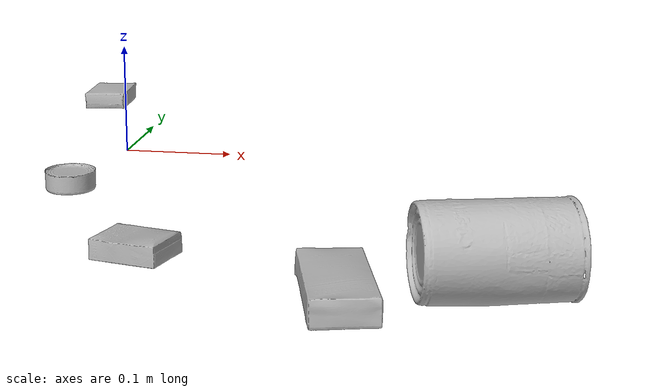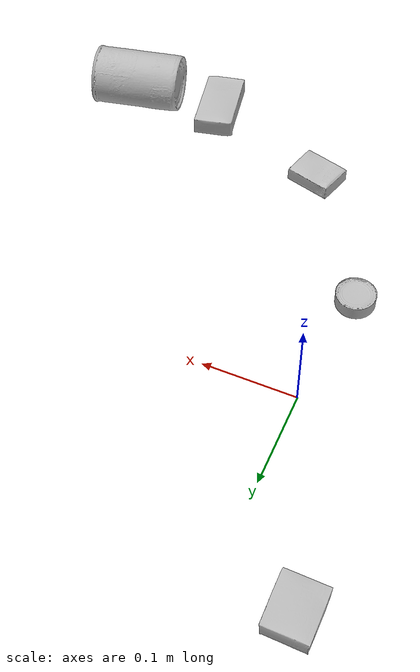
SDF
<sdf version="1.4">
  <world name="default">
    <light name="light1" type="point">
      <pose>0 0 1 0 0 0</pose>
      <diffuse>3 3 3 1</diffuse>
      <specular>3 3 3 1</specular>
    </light>
    <light name="light2" type="point">
      <pose>0 0.5 2 0 0 0</pose>
      <diffuse>1 1 1 1</diffuse>
      <specular>1 1 1 1</specular>
    </light>
    <light name="light3" type="point">
      <pose>0 0.5 2 0 0 0</pose>
      <diffuse>3 3 3 1</diffuse>
      <specular>3 3 3 1</specular>
    </light>
    <scene>
      <ambient>0.7 0.7 0.7</ambient>
    </scene>
    <model name="box1">
      <link name="link_box1">
        <collision name="default">
          <geometry>
            <mesh>
              <uri>model://cracker_box/collision_meshes/collision.obj</uri>
              <scale>0.25 0.25 0.25</scale>
            </mesh>
          </geometry>
          <surface>
            <friction>
              <ode>
                <mu>0.5</mu>
                <mu2>0.5</mu2>
              </ode>
            </friction>
          <contact>
        <ode>
            <max_vel>0</max_vel>
            <min_depth>0.0001</min_depth>
            <kp>1e8</kp>
        </ode>
    </contact></surface>
        </collision>
        <visual name="default">
          <geometry>
            <mesh>
              <uri>model://cracker_box/visual_meshes/visual.dae</uri>
              <scale>0.25 0.25 0.25</scale>
            </mesh>
          </geometry>
        </visual>
        <inertial>
          <mass>0.029061755165457726</mass>
          <pose>0.00023660456645302474 6.358561950037256e-05 -0.0004257383698131889 -0.0003162077745192934 -0.011106489600167671 0.002546795235645709</pose>
          <inertia>
            <ixx>4.620008e-06</ixx>
            <iyy>7.6285405e-06</iyy>
            <izz>1.0886628e-05</izz>
            <ixy>0</ixy>
            <ixz>0</ixz>
            <iyz>0</iyz>
          </inertia>
        </inertial>
      </link>
      <pose>0.08737208694219589 -0.2891395092010498 0.009096023626625538 -0.01405116627831171 -0.005016257709050915 -0.27271169747718216</pose>
    </model>
    <model name="box2">
      <link name="link_box2">
        <collision name="default">
          <geometry>
            <mesh>
              <uri>model://sugar_box/collision_meshes/collision.obj</uri>
              <scale>0.5 0.5 0.5</scale>
            </mesh>
          </geometry>
          <surface>
            <friction>
              <ode>
                <mu>0.5</mu>
                <mu2>0.5</mu2>
              </ode>
            </friction>
          <contact>
        <ode>
            <max_vel>0</max_vel>
            <min_depth>0.0001</min_depth>
            <kp>1e8</kp>
        </ode>
    </contact></surface>
        </collision>
        <visual name="default">
          <geometry>
            <mesh>
              <uri>model://sugar_box/visual_meshes/visual.dae</uri>
              <scale>0.5 0.5 0.5</scale>
            </mesh>
          </geometry>
        </visual>
        <inertial>
          <mass>0.08909860998392105</mass>
          <pose>0.0005171863595023751 1.924554817378521e-05 -0.00018182402709499002 -0.00040462606756407727 0.0010506635218583888 0.002615378789044619</pose>
          <inertia>
            <ixx>1.8559176e-05</ixx>
            <iyy>5.9987076e-05</iyy>
            <izz>7.181169e-05</izz>
            <ixy>0</ixy>
            <ixz>0</ixz>
            <iyz>0</iyz>
          </inertia>
        </inertial>
      </link>
      <pose>0.23564277589321136 -0.3525041341781616 0.01139931008219719 0.000774715066916939 -0.023432979960089393 1.7827113892648339</pose>
    </model>
    <model name="box3">
      <link name="link_box3">
        <collision name="default">
          <geometry>
            <mesh>
              <uri>model://pudding_box/collision_meshes/collision.obj</uri>
              <scale>0.5 0.5 0.5</scale>
            </mesh>
          </geometry>
          <surface>
            <friction>
              <ode>
                <mu>0.5</mu>
                <mu2>0.5</mu2>
              </ode>
            </friction>
          <contact>
        <ode>
            <max_vel>0</max_vel>
            <min_depth>0.0001</min_depth>
            <kp>1e8</kp>
        </ode>
    </contact></surface>
        </collision>
        <visual name="default">
          <geometry>
            <mesh>
              <uri>model://pudding_box/visual_meshes/visual.dae</uri>
              <scale>0.5 0.5 0.5</scale>
            </mesh>
          </geometry>
        </visual>
        <inertial>
          <mass>0.058397307991981506</mass>
          <pose>0.00024474109522998333 0.000403394311433658 -0.0002594413817860186 0.005213099939270767 -0.006603797768571226 0.020079825168092046</pose>
          <inertia>
            <ixx>1.650379e-05</ixx>
            <iyy>1.1103868e-05</iyy>
            <izz>2.437216e-05</izz>
            <ixy>0</ixy>
            <ixz>0</ixz>
            <iyz>0</iyz>
          </inertia>
        </inertial>
      </link>
      <pose>-0.07491590827703476 0.20063474774360657 0.009862900711596012 0.022348452367401316 -0.011391765801620747 0.0033920151491285823</pose>
    </model>
    <model name="can1">
      <link name="link_can1">
        <collision name="default">
          <geometry>
            <mesh>
              <uri>model://tuna_fish_can/collision_meshes/collision.obj</uri>
              <scale>0.5 0.5 0.5</scale>
            </mesh>
          </geometry>
          <surface>
            <friction>
              <ode>
                <mu>0.5</mu>
                <mu2>0.5</mu2>
              </ode>
            </friction>
          <contact>
        <ode>
            <max_vel>0</max_vel>
            <min_depth>0.0001</min_depth>
            <kp>1e8</kp>
        </ode>
    </contact></surface>
        </collision>
        <visual name="default">
          <geometry>
            <mesh>
              <uri>model://tuna_fish_can/visual_meshes/visual.dae</uri>
              <scale>0.5 0.5 0.5</scale>
            </mesh>
          </geometry>
        </visual>
        <inertial>
          <mass>0.024247437715530396</mass>
          <pose>-2.0361860151751898e-05 -7.256063781824196e-06 -0.000526902440469712 -0.0017944785229743307 0.0001716120442354053 0.2405371667019961</pose>
          <inertia>
            <ixx>3.2782896e-06</ixx>
            <iyy>3.2646258e-06</iyy>
            <izz>5.609621e-06</izz>
            <ixy>0</ixy>
            <ixz>0</ixz>
            <iyz>0</iyz>
          </inertia>
        </inertial>
      </link>
      <pose>-0.012225376442074776 -0.13250300288200378 0.00851999968290329 1.8911515494133595e-09 7.786698399470563e-09 -3.081685622392618</pose>
    </model>
    <model name="can2">
      <link name="link_can2">
        <collision name="default">
          <geometry>
            <mesh>
              <uri>model://tomato_soup_can/collision_meshes/collision.obj</uri>
              <scale>1.0 1.0 1.0</scale>
            </mesh>
          </geometry>
          <surface>
            <friction>
              <ode>
                <mu>0.5</mu>
                <mu2>0.5</mu2>
              </ode>
            </friction>
          <contact>
        <ode>
            <max_vel>0</max_vel>
            <min_depth>0.0001</min_depth>
            <kp>1e8</kp>
        </ode>
    </contact></surface>
        </collision>
        <visual name="default">
          <geometry>
            <mesh>
              <uri>model://tomato_soup_can/visual_meshes/visual.dae</uri>
              <scale>1.0 1.0 1.0</scale>
            </mesh>
          </geometry>
        </visual>
        <inertial>
          <mass>0.44329848885536194</mass>
          <pose>0.0001265227037947625 0.00010805520287249237 -0.0017973989015445113 0.007020066893531886 0.00042299576578658417 -0.009903435969571123</pose>
          <inertia>
            <ixx>0.00048603912</ixx>
            <iyy>0.0004832301</iyy>
            <izz>0.00025190957</izz>
            <ixy>0</ixy>
            <ixz>0</ixz>
            <iyz>0</iyz>
          </inertia>
        </inertial>
      </link>
      <pose>0.3330726623535156 -0.3338671624660492 0.03381509333848953 -1.5615002014460586 -1.2812327700116088 -1.365505798648184</pose>
    </model>
  <physics type="ode">
      <max_contacts>50</max_contacts>
      <ode>
        <solver>
          <type>quick</type>
          <iters>75</iters>
        </solver>
        <constraints>
          <contact_max_correcting_vel>0</contact_max_correcting_vel>
          <contact_surface_layer>0</contact_surface_layer>
        </constraints>
      </ode>
    </physics></world>
</sdf>
